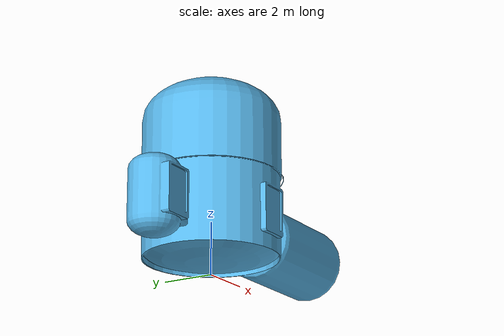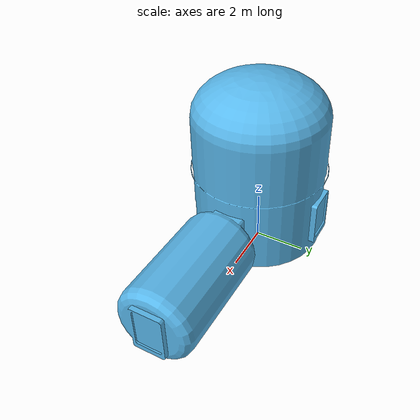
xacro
<?xml version="1.0"?>
<robot name="habitat_demonstration_unit" xmlns:xacro="http://www.ros.org/wiki/xacro">

  <xacro:arg name="x" default="0.0"/>
  <xacro:arg name="y" default="0.0"/>
  <xacro:arg name="z" default="0.0"/>
  <xacro:arg name="roll" default="0.0"/>
  <xacro:arg name="pitch" default="0.0"/>
  <xacro:arg name="yaw" default="0.0"/>
  <xacro:arg name="parent" default="world"/>

  <link name="$(arg parent)"/>

  <joint name="joint_hdu_world" type="fixed">
    <origin xyz="$(arg x) $(arg y) $(arg z)" rpy="$(arg roll) $(arg pitch) $(arg yaw)"/>
    <parent link="$(arg parent)"/>
    <child link="hdu_part_1"/>
  </joint>

  <!-- HDU Body -->
  <link name="hdu_part_1">

    <inertial>
      <origin xyz="0 0 0.0" rpy="0 0 0"/>
      <mass value="1"/>
      <inertia ixx="100"  ixy="0"  ixz="0" iyy="100" iyz="0" izz="100" />
    </inertial>

    <visual>
      <origin xyz="0 0 0" rpy="0 0 0" />
      <geometry>
        <mesh filename="file://$(find space_resources)/models/habitat_demonstration_unit/meshes/habitat_demonstration_unit_part_1.dae" scale="1 1 1"/>
      </geometry>
    </visual>

    <collision>
      <origin xyz="0 0 0" rpy="0 0 0"/>
      <geometry>
        <mesh filename="file://$(find space_resources)/models/habitat_demonstration_unit/meshes/habitat_demonstration_unit_part_1.dae" scale="1 1 1"/>
      </geometry>
    </collision>

  </link>

</robot>
